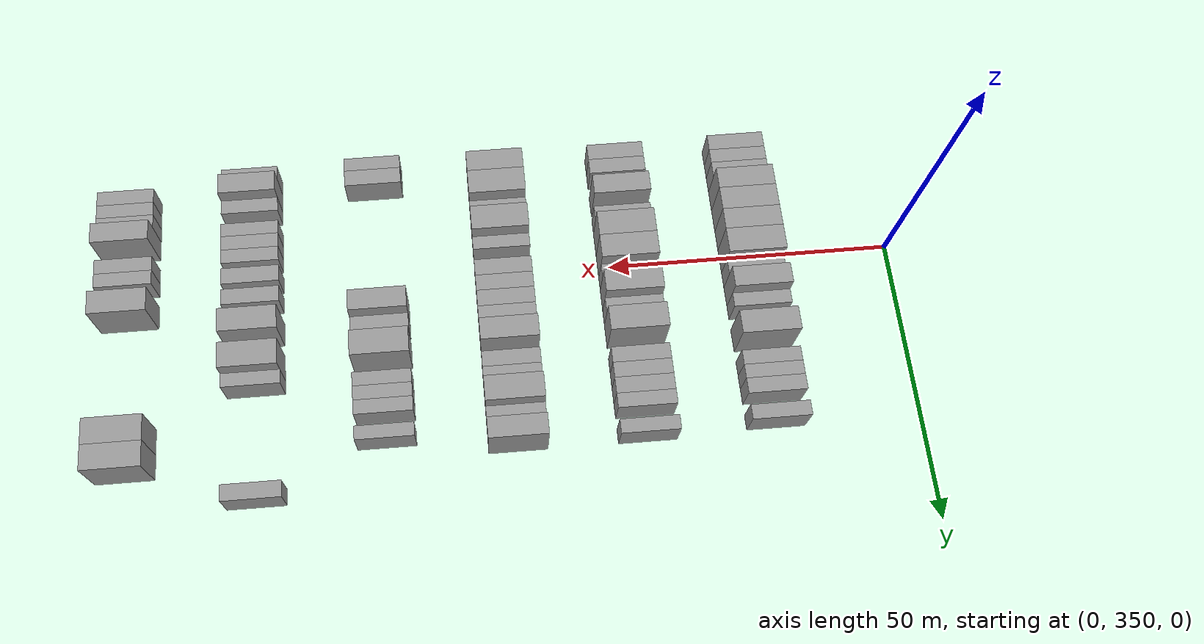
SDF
<sdf version="1.6">
 <world name="default">
  <model name="building_170">
   <static>1</static>
   <pose>25.0000 329.3556 0 0.000000 0.000000 0.000000</pose>
   <link name="link">
    <pose>0 0 3.00 0 0 0</pose>
    <collision name="collision"><geometry><box><size>10.0000 2.9465 6.0000</size></box></geometry></collision>
    <visual name="visual">
     <cast_shadows>0</cast_shadows>
     <geometry><box><size>10.0000 2.9465 6.0000</size></box></geometry>
     <material>
      <script>
       <uri>model://grey_wall/materials/scripts</uri>
       <uri>model://grey_wall/materials/textures</uri>
       <name>vrc/grey_wall</name>
      </script>
     </material>
    </visual>
   </link>
  </model>
  <model name="building_171">
   <static>1</static>
   <pose>25.0000 332.1304 0 0.000000 0.000000 0.000000</pose>
   <link name="link">
    <pose>0 0 3.00 0 0 0</pose>
    <collision name="collision"><geometry><box><size>10.0000 2.6031 6.0000</size></box></geometry></collision>
    <visual name="visual">
     <cast_shadows>0</cast_shadows>
     <geometry><box><size>10.0000 2.6031 6.0000</size></box></geometry>
     <material>
      <script>
       <uri>model://grey_wall/materials/scripts</uri>
       <uri>model://grey_wall/materials/textures</uri>
       <name>vrc/grey_wall</name>
      </script>
     </material>
    </visual>
   </link>
  </model>
  <model name="building_172">
   <static>1</static>
   <pose>25.0000 334.8948 0 0.000000 0.000000 0.000000</pose>
   <link name="link">
    <pose>0 0 3.00 0 0 0</pose>
    <collision name="collision"><geometry><box><size>10.0000 2.9257 6.0000</size></box></geometry></collision>
    <visual name="visual">
     <cast_shadows>0</cast_shadows>
     <geometry><box><size>10.0000 2.9257 6.0000</size></box></geometry>
     <material>
      <script>
       <uri>model://grey_wall/materials/scripts</uri>
       <uri>model://grey_wall/materials/textures</uri>
       <name>vrc/grey_wall</name>
      </script>
     </material>
    </visual>
   </link>
  </model>
  <model name="building_173">
   <static>1</static>
   <pose>25.0000 338.2968 0 0.000000 0.000000 0.000000</pose>
   <link name="link">
    <pose>0 0 4.50 0 0 0</pose>
    <collision name="collision"><geometry><box><size>10.0000 3.8784 9.0000</size></box></geometry></collision>
    <visual name="visual">
     <cast_shadows>0</cast_shadows>
     <geometry><box><size>10.0000 3.8784 9.0000</size></box></geometry>
     <material>
      <script>
       <uri>model://grey_wall/materials/scripts</uri>
       <uri>model://grey_wall/materials/textures</uri>
       <name>vrc/grey_wall</name>
      </script>
     </material>
    </visual>
   </link>
  </model>
  <model name="building_174">
   <static>1</static>
   <pose>25.0000 342.3280 0 0.000000 0.000000 0.000000</pose>
   <link name="link">
    <pose>0 0 4.50 0 0 0</pose>
    <collision name="collision"><geometry><box><size>10.0000 4.1838 9.0000</size></box></geometry></collision>
    <visual name="visual">
     <cast_shadows>0</cast_shadows>
     <geometry><box><size>10.0000 4.1838 9.0000</size></box></geometry>
     <material>
      <script>
       <uri>model://grey_wall/materials/scripts</uri>
       <uri>model://grey_wall/materials/textures</uri>
       <name>vrc/grey_wall</name>
      </script>
     </material>
    </visual>
   </link>
  </model>
  <model name="building_175">
   <static>1</static>
   <pose>25.0000 346.3346 0 0.000000 0.000000 0.000000</pose>
   <link name="link">
    <pose>0 0 4.50 0 0 0</pose>
    <collision name="collision"><geometry><box><size>10.0000 3.8296 9.0000</size></box></geometry></collision>
    <visual name="visual">
     <cast_shadows>0</cast_shadows>
     <geometry><box><size>10.0000 3.8296 9.0000</size></box></geometry>
     <material>
      <script>
       <uri>model://grey_wall/materials/scripts</uri>
       <uri>model://grey_wall/materials/textures</uri>
       <name>vrc/grey_wall</name>
      </script>
     </material>
    </visual>
   </link>
  </model>
  <model name="building_176">
   <static>1</static>
   <pose>25.0000 350.4904 0 0.000000 0.000000 0.000000</pose>
   <link name="link">
    <pose>0 0 4.50 0 0 0</pose>
    <collision name="collision"><geometry><box><size>10.0000 4.4819 9.0000</size></box></geometry></collision>
    <visual name="visual">
     <cast_shadows>0</cast_shadows>
     <geometry><box><size>10.0000 4.4819 9.0000</size></box></geometry>
     <material>
      <script>
       <uri>model://grey_wall/materials/scripts</uri>
       <uri>model://grey_wall/materials/textures</uri>
       <name>vrc/grey_wall</name>
      </script>
     </material>
    </visual>
   </link>
  </model>
  <model name="building_177">
   <static>1</static>
   <pose>25.0000 354.1709 0 0.000000 0.000000 0.000000</pose>
   <link name="link">
    <pose>0 0 3.00 0 0 0</pose>
    <collision name="collision"><geometry><box><size>10.0000 2.8792 6.0000</size></box></geometry></collision>
    <visual name="visual">
     <cast_shadows>0</cast_shadows>
     <geometry><box><size>10.0000 2.8792 6.0000</size></box></geometry>
     <material>
      <script>
       <uri>model://grey_wall/materials/scripts</uri>
       <uri>model://grey_wall/materials/textures</uri>
       <name>vrc/grey_wall</name>
      </script>
     </material>
    </visual>
   </link>
  </model>
  <model name="building_178">
   <static>1</static>
   <pose>25.0000 357.4337 0 0.000000 0.000000 0.000000</pose>
   <link name="link">
    <pose>0 0 4.50 0 0 0</pose>
    <collision name="collision"><geometry><box><size>10.0000 3.6463 9.0000</size></box></geometry></collision>
    <visual name="visual">
     <cast_shadows>0</cast_shadows>
     <geometry><box><size>10.0000 3.6463 9.0000</size></box></geometry>
     <material>
      <script>
       <uri>model://grey_wall/materials/scripts</uri>
       <uri>model://grey_wall/materials/textures</uri>
       <name>vrc/grey_wall</name>
      </script>
     </material>
    </visual>
   </link>
  </model>
  <model name="building_179">
   <static>1</static>
   <pose>25.0000 360.5016 0 0.000000 0.000000 0.000000</pose>
   <link name="link">
    <pose>0 0 3.00 0 0 0</pose>
    <collision name="collision"><geometry><box><size>10.0000 2.4896 6.0000</size></box></geometry></collision>
    <visual name="visual">
     <cast_shadows>0</cast_shadows>
     <geometry><box><size>10.0000 2.4896 6.0000</size></box></geometry>
     <material>
      <script>
       <uri>model://grey_wall/materials/scripts</uri>
       <uri>model://grey_wall/materials/textures</uri>
       <name>vrc/grey_wall</name>
      </script>
     </material>
    </visual>
   </link>
  </model>
  <model name="building_180">
   <static>1</static>
   <pose>25.0000 365.8027 0 0.000000 0.000000 0.000000</pose>
   <link name="link">
    <pose>0 0 4.50 0 0 0</pose>
    <collision name="collision"><geometry><box><size>10.0000 4.1126 9.0000</size></box></geometry></collision>
    <visual name="visual">
     <cast_shadows>0</cast_shadows>
     <geometry><box><size>10.0000 4.1126 9.0000</size></box></geometry>
     <material>
      <script>
       <uri>model://grey_wall/materials/scripts</uri>
       <uri>model://grey_wall/materials/textures</uri>
       <name>vrc/grey_wall</name>
      </script>
     </material>
    </visual>
   </link>
  </model>
  <model name="building_181">
   <static>1</static>
   <pose>25.0000 371.1342 0 0.000000 0.000000 0.000000</pose>
   <link name="link">
    <pose>0 0 3.00 0 0 0</pose>
    <collision name="collision"><geometry><box><size>10.0000 2.5502 6.0000</size></box></geometry></collision>
    <visual name="visual">
     <cast_shadows>0</cast_shadows>
     <geometry><box><size>10.0000 2.5502 6.0000</size></box></geometry>
     <material>
      <script>
       <uri>model://grey_wall/materials/scripts</uri>
       <uri>model://grey_wall/materials/textures</uri>
       <name>vrc/grey_wall</name>
      </script>
     </material>
    </visual>
   </link>
  </model>
  <model name="building_182">
   <static>1</static>
   <pose>25.0000 373.6312 0 0.000000 0.000000 0.000000</pose>
   <link name="link">
    <pose>0 0 3.00 0 0 0</pose>
    <collision name="collision"><geometry><box><size>10.0000 2.4437 6.0000</size></box></geometry></collision>
    <visual name="visual">
     <cast_shadows>0</cast_shadows>
     <geometry><box><size>10.0000 2.4437 6.0000</size></box></geometry>
     <material>
      <script>
       <uri>model://grey_wall/materials/scripts</uri>
       <uri>model://grey_wall/materials/textures</uri>
       <name>vrc/grey_wall</name>
      </script>
     </material>
    </visual>
   </link>
  </model>
  <model name="building_183">
   <static>1</static>
   <pose>25.0000 376.2066 0 0.000000 0.000000 0.000000</pose>
   <link name="link">
    <pose>0 0 3.00 0 0 0</pose>
    <collision name="collision"><geometry><box><size>10.0000 2.7072 6.0000</size></box></geometry></collision>
    <visual name="visual">
     <cast_shadows>0</cast_shadows>
     <geometry><box><size>10.0000 2.7072 6.0000</size></box></geometry>
     <material>
      <script>
       <uri>model://grey_wall/materials/scripts</uri>
       <uri>model://grey_wall/materials/textures</uri>
       <name>vrc/grey_wall</name>
      </script>
     </material>
    </visual>
   </link>
  </model>
  <model name="building_184">
   <static>1</static>
   <pose>25.0000 380.8460 0 0.000000 0.000000 0.000000</pose>
   <link name="link">
    <pose>0 0 3.00 0 0 0</pose>
    <collision name="collision"><geometry><box><size>10.0000 2.5715 6.0000</size></box></geometry></collision>
    <visual name="visual">
     <cast_shadows>0</cast_shadows>
     <geometry><box><size>10.0000 2.5715 6.0000</size></box></geometry>
     <material>
      <script>
       <uri>model://grey_wall/materials/scripts</uri>
       <uri>model://grey_wall/materials/textures</uri>
       <name>vrc/grey_wall</name>
      </script>
     </material>
    </visual>
   </link>
  </model>
  <model name="building_362">
   <static>1</static>
   <pose>47.0000 329.5957 0 0.000000 0.000000 0.000000</pose>
   <link name="link">
    <pose>0 0 3.00 0 0 0</pose>
    <collision name="collision"><geometry><box><size>10.0000 2.9752 6.0000</size></box></geometry></collision>
    <visual name="visual">
     <cast_shadows>0</cast_shadows>
     <geometry><box><size>10.0000 2.9752 6.0000</size></box></geometry>
     <material>
      <script>
       <uri>model://grey_wall/materials/scripts</uri>
       <uri>model://grey_wall/materials/textures</uri>
       <name>vrc/grey_wall</name>
      </script>
     </material>
    </visual>
   </link>
  </model>
  <model name="building_363">
   <static>1</static>
   <pose>47.0000 332.5052 0 0.000000 0.000000 0.000000</pose>
   <link name="link">
    <pose>0 0 3.00 0 0 0</pose>
    <collision name="collision"><geometry><box><size>10.0000 2.8438 6.0000</size></box></geometry></collision>
    <visual name="visual">
     <cast_shadows>0</cast_shadows>
     <geometry><box><size>10.0000 2.8438 6.0000</size></box></geometry>
     <material>
      <script>
       <uri>model://grey_wall/materials/scripts</uri>
       <uri>model://grey_wall/materials/textures</uri>
       <name>vrc/grey_wall</name>
      </script>
     </material>
    </visual>
   </link>
  </model>
  <model name="building_364">
   <static>1</static>
   <pose>47.0000 337.7546 0 0.000000 0.000000 0.000000</pose>
   <link name="link">
    <pose>0 0 4.50 0 0 0</pose>
    <collision name="collision"><geometry><box><size>10.0000 3.6550 9.0000</size></box></geometry></collision>
    <visual name="visual">
     <cast_shadows>0</cast_shadows>
     <geometry><box><size>10.0000 3.6550 9.0000</size></box></geometry>
     <material>
      <script>
       <uri>model://grey_wall/materials/scripts</uri>
       <uri>model://grey_wall/materials/textures</uri>
       <name>vrc/grey_wall</name>
      </script>
     </material>
    </visual>
   </link>
  </model>
  <model name="building_365">
   <static>1</static>
   <pose>47.0000 341.8988 0 0.000000 0.000000 0.000000</pose>
   <link name="link">
    <pose>0 0 3.00 0 0 0</pose>
    <collision name="collision"><geometry><box><size>10.0000 2.6334 6.0000</size></box></geometry></collision>
    <visual name="visual">
     <cast_shadows>0</cast_shadows>
     <geometry><box><size>10.0000 2.6334 6.0000</size></box></geometry>
     <material>
      <script>
       <uri>model://grey_wall/materials/scripts</uri>
       <uri>model://grey_wall/materials/textures</uri>
       <name>vrc/grey_wall</name>
      </script>
     </material>
    </visual>
   </link>
  </model>
  <model name="building_366">
   <static>1</static>
   <pose>47.0000 345.4534 0 0.000000 0.000000 0.000000</pose>
   <link name="link">
    <pose>0 0 4.50 0 0 0</pose>
    <collision name="collision"><geometry><box><size>10.0000 4.4756 9.0000</size></box></geometry></collision>
    <visual name="visual">
     <cast_shadows>0</cast_shadows>
     <geometry><box><size>10.0000 4.4756 9.0000</size></box></geometry>
     <material>
      <script>
       <uri>model://grey_wall/materials/scripts</uri>
       <uri>model://grey_wall/materials/textures</uri>
       <name>vrc/grey_wall</name>
      </script>
     </material>
    </visual>
   </link>
  </model>
  <model name="building_367">
   <static>1</static>
   <pose>47.0000 349.8148 0 0.000000 0.000000 0.000000</pose>
   <link name="link">
    <pose>0 0 4.50 0 0 0</pose>
    <collision name="collision"><geometry><box><size>10.0000 4.2474 9.0000</size></box></geometry></collision>
    <visual name="visual">
     <cast_shadows>0</cast_shadows>
     <geometry><box><size>10.0000 4.2474 9.0000</size></box></geometry>
     <material>
      <script>
       <uri>model://grey_wall/materials/scripts</uri>
       <uri>model://grey_wall/materials/textures</uri>
       <name>vrc/grey_wall</name>
      </script>
     </material>
    </visual>
   </link>
  </model>
  <model name="building_368">
   <static>1</static>
   <pose>47.0000 353.1732 0 0.000000 0.000000 0.000000</pose>
   <link name="link">
    <pose>0 0 3.00 0 0 0</pose>
    <collision name="collision"><geometry><box><size>10.0000 2.4692 6.0000</size></box></geometry></collision>
    <visual name="visual">
     <cast_shadows>0</cast_shadows>
     <geometry><box><size>10.0000 2.4692 6.0000</size></box></geometry>
     <material>
      <script>
       <uri>model://grey_wall/materials/scripts</uri>
       <uri>model://grey_wall/materials/textures</uri>
       <name>vrc/grey_wall</name>
      </script>
     </material>
    </visual>
   </link>
  </model>
  <model name="building_369">
   <static>1</static>
   <pose>47.0000 356.3895 0 0.000000 0.000000 0.000000</pose>
   <link name="link">
    <pose>0 0 4.50 0 0 0</pose>
    <collision name="collision"><geometry><box><size>10.0000 3.9636 9.0000</size></box></geometry></collision>
    <visual name="visual">
     <cast_shadows>0</cast_shadows>
     <geometry><box><size>10.0000 3.9636 9.0000</size></box></geometry>
     <material>
      <script>
       <uri>model://grey_wall/materials/scripts</uri>
       <uri>model://grey_wall/materials/textures</uri>
       <name>vrc/grey_wall</name>
      </script>
     </material>
    </visual>
   </link>
  </model>
  <model name="building_370">
   <static>1</static>
   <pose>47.0000 359.7651 0 0.000000 0.000000 0.000000</pose>
   <link name="link">
    <pose>0 0 3.00 0 0 0</pose>
    <collision name="collision"><geometry><box><size>10.0000 2.7875 6.0000</size></box></geometry></collision>
    <visual name="visual">
     <cast_shadows>0</cast_shadows>
     <geometry><box><size>10.0000 2.7875 6.0000</size></box></geometry>
     <material>
      <script>
       <uri>model://grey_wall/materials/scripts</uri>
       <uri>model://grey_wall/materials/textures</uri>
       <name>vrc/grey_wall</name>
      </script>
     </material>
    </visual>
   </link>
  </model>
  <model name="building_371">
   <static>1</static>
   <pose>47.0000 363.3175 0 0.000000 0.000000 0.000000</pose>
   <link name="link">
    <pose>0 0 4.50 0 0 0</pose>
    <collision name="collision"><geometry><box><size>10.0000 4.3174 9.0000</size></box></geometry></collision>
    <visual name="visual">
     <cast_shadows>0</cast_shadows>
     <geometry><box><size>10.0000 4.3174 9.0000</size></box></geometry>
     <material>
      <script>
       <uri>model://grey_wall/materials/scripts</uri>
       <uri>model://grey_wall/materials/textures</uri>
       <name>vrc/grey_wall</name>
      </script>
     </material>
    </visual>
   </link>
  </model>
  <model name="building_372">
   <static>1</static>
   <pose>47.0000 368.8625 0 0.000000 0.000000 0.000000</pose>
   <link name="link">
    <pose>0 0 3.00 0 0 0</pose>
    <collision name="collision"><geometry><box><size>10.0000 2.7726 6.0000</size></box></geometry></collision>
    <visual name="visual">
     <cast_shadows>0</cast_shadows>
     <geometry><box><size>10.0000 2.7726 6.0000</size></box></geometry>
     <material>
      <script>
       <uri>model://grey_wall/materials/scripts</uri>
       <uri>model://grey_wall/materials/textures</uri>
       <name>vrc/grey_wall</name>
      </script>
     </material>
    </visual>
   </link>
  </model>
  <model name="building_373">
   <static>1</static>
   <pose>47.0000 371.5925 0 0.000000 0.000000 0.000000</pose>
   <link name="link">
    <pose>0 0 3.00 0 0 0</pose>
    <collision name="collision"><geometry><box><size>10.0000 2.6873 6.0000</size></box></geometry></collision>
    <visual name="visual">
     <cast_shadows>0</cast_shadows>
     <geometry><box><size>10.0000 2.6873 6.0000</size></box></geometry>
     <material>
      <script>
       <uri>model://grey_wall/materials/scripts</uri>
       <uri>model://grey_wall/materials/textures</uri>
       <name>vrc/grey_wall</name>
      </script>
     </material>
    </visual>
   </link>
  </model>
  <model name="building_374">
   <static>1</static>
   <pose>47.0000 374.3512 0 0.000000 0.000000 0.000000</pose>
   <link name="link">
    <pose>0 0 3.00 0 0 0</pose>
    <collision name="collision"><geometry><box><size>10.0000 2.8302 6.0000</size></box></geometry></collision>
    <visual name="visual">
     <cast_shadows>0</cast_shadows>
     <geometry><box><size>10.0000 2.8302 6.0000</size></box></geometry>
     <material>
      <script>
       <uri>model://grey_wall/materials/scripts</uri>
       <uri>model://grey_wall/materials/textures</uri>
       <name>vrc/grey_wall</name>
      </script>
     </material>
    </visual>
   </link>
  </model>
  <model name="building_375">
   <static>1</static>
   <pose>47.0000 377.0423 0 0.000000 0.000000 0.000000</pose>
   <link name="link">
    <pose>0 0 3.00 0 0 0</pose>
    <collision name="collision"><geometry><box><size>10.0000 2.5520 6.0000</size></box></geometry></collision>
    <visual name="visual">
     <cast_shadows>0</cast_shadows>
     <geometry><box><size>10.0000 2.5520 6.0000</size></box></geometry>
     <material>
      <script>
       <uri>model://grey_wall/materials/scripts</uri>
       <uri>model://grey_wall/materials/textures</uri>
       <name>vrc/grey_wall</name>
      </script>
     </material>
    </visual>
   </link>
  </model>
  <model name="building_376">
   <static>1</static>
   <pose>47.0000 381.5546 0 0.000000 0.000000 0.000000</pose>
   <link name="link">
    <pose>0 0 3.00 0 0 0</pose>
    <collision name="collision"><geometry><box><size>10.0000 2.4726 6.0000</size></box></geometry></collision>
    <visual name="visual">
     <cast_shadows>0</cast_shadows>
     <geometry><box><size>10.0000 2.4726 6.0000</size></box></geometry>
     <material>
      <script>
       <uri>model://grey_wall/materials/scripts</uri>
       <uri>model://grey_wall/materials/textures</uri>
       <name>vrc/grey_wall</name>
      </script>
     </material>
    </visual>
   </link>
  </model>
  <model name="building_554">
   <static>1</static>
   <pose>69.0000 331.3287 0 0.000000 0.000000 0.000000</pose>
   <link name="link">
    <pose>0 0 4.50 0 0 0</pose>
    <collision name="collision"><geometry><box><size>10.0000 3.8752 9.0000</size></box></geometry></collision>
    <visual name="visual">
     <cast_shadows>0</cast_shadows>
     <geometry><box><size>10.0000 3.8752 9.0000</size></box></geometry>
     <material>
      <script>
       <uri>model://grey_wall/materials/scripts</uri>
       <uri>model://grey_wall/materials/textures</uri>
       <name>vrc/grey_wall</name>
      </script>
     </material>
    </visual>
   </link>
  </model>
  <model name="building_555">
   <static>1</static>
   <pose>69.0000 335.5026 0 0.000000 0.000000 0.000000</pose>
   <link name="link">
    <pose>0 0 4.50 0 0 0</pose>
    <collision name="collision"><geometry><box><size>10.0000 4.4726 9.0000</size></box></geometry></collision>
    <visual name="visual">
     <cast_shadows>0</cast_shadows>
     <geometry><box><size>10.0000 4.4726 9.0000</size></box></geometry>
     <material>
      <script>
       <uri>model://grey_wall/materials/scripts</uri>
       <uri>model://grey_wall/materials/textures</uri>
       <name>vrc/grey_wall</name>
      </script>
     </material>
    </visual>
   </link>
  </model>
  <model name="building_556">
   <static>1</static>
   <pose>69.0000 339.0526 0 0.000000 0.000000 0.000000</pose>
   <link name="link">
    <pose>0 0 3.00 0 0 0</pose>
    <collision name="collision"><geometry><box><size>10.0000 2.6275 6.0000</size></box></geometry></collision>
    <visual name="visual">
     <cast_shadows>0</cast_shadows>
     <geometry><box><size>10.0000 2.6275 6.0000</size></box></geometry>
     <material>
      <script>
       <uri>model://grey_wall/materials/scripts</uri>
       <uri>model://grey_wall/materials/textures</uri>
       <name>vrc/grey_wall</name>
      </script>
     </material>
    </visual>
   </link>
  </model>
  <model name="building_557">
   <static>1</static>
   <pose>69.0000 342.6087 0 0.000000 0.000000 0.000000</pose>
   <link name="link">
    <pose>0 0 4.50 0 0 0</pose>
    <collision name="collision"><geometry><box><size>10.0000 4.4847 9.0000</size></box></geometry></collision>
    <visual name="visual">
     <cast_shadows>0</cast_shadows>
     <geometry><box><size>10.0000 4.4847 9.0000</size></box></geometry>
     <material>
      <script>
       <uri>model://grey_wall/materials/scripts</uri>
       <uri>model://grey_wall/materials/textures</uri>
       <name>vrc/grey_wall</name>
      </script>
     </material>
    </visual>
   </link>
  </model>
  <model name="building_558">
   <static>1</static>
   <pose>69.0000 346.0771 0 0.000000 0.000000 0.000000</pose>
   <link name="link">
    <pose>0 0 3.00 0 0 0</pose>
    <collision name="collision"><geometry><box><size>10.0000 2.4521 6.0000</size></box></geometry></collision>
    <visual name="visual">
     <cast_shadows>0</cast_shadows>
     <geometry><box><size>10.0000 2.4521 6.0000</size></box></geometry>
     <material>
      <script>
       <uri>model://grey_wall/materials/scripts</uri>
       <uri>model://grey_wall/materials/textures</uri>
       <name>vrc/grey_wall</name>
      </script>
     </material>
    </visual>
   </link>
  </model>
  <model name="building_559">
   <static>1</static>
   <pose>69.0000 350.7894 0 0.000000 0.000000 0.000000</pose>
   <link name="link">
    <pose>0 0 3.00 0 0 0</pose>
    <collision name="collision"><geometry><box><size>10.0000 2.9725 6.0000</size></box></geometry></collision>
    <visual name="visual">
     <cast_shadows>0</cast_shadows>
     <geometry><box><size>10.0000 2.9725 6.0000</size></box></geometry>
     <material>
      <script>
       <uri>model://grey_wall/materials/scripts</uri>
       <uri>model://grey_wall/materials/textures</uri>
       <name>vrc/grey_wall</name>
      </script>
     </material>
    </visual>
   </link>
  </model>
  <model name="building_560">
   <static>1</static>
   <pose>69.0000 353.7149 0 0.000000 0.000000 0.000000</pose>
   <link name="link">
    <pose>0 0 3.00 0 0 0</pose>
    <collision name="collision"><geometry><box><size>10.0000 2.8785 6.0000</size></box></geometry></collision>
    <visual name="visual">
     <cast_shadows>0</cast_shadows>
     <geometry><box><size>10.0000 2.8785 6.0000</size></box></geometry>
     <material>
      <script>
       <uri>model://grey_wall/materials/scripts</uri>
       <uri>model://grey_wall/materials/textures</uri>
       <name>vrc/grey_wall</name>
      </script>
     </material>
    </visual>
   </link>
  </model>
  <model name="building_561">
   <static>1</static>
   <pose>69.0000 356.6251 0 0.000000 0.000000 0.000000</pose>
   <link name="link">
    <pose>0 0 3.00 0 0 0</pose>
    <collision name="collision"><geometry><box><size>10.0000 2.9419 6.0000</size></box></geometry></collision>
    <visual name="visual">
     <cast_shadows>0</cast_shadows>
     <geometry><box><size>10.0000 2.9419 6.0000</size></box></geometry>
     <material>
      <script>
       <uri>model://grey_wall/materials/scripts</uri>
       <uri>model://grey_wall/materials/textures</uri>
       <name>vrc/grey_wall</name>
      </script>
     </material>
    </visual>
   </link>
  </model>
  <model name="building_562">
   <static>1</static>
   <pose>69.0000 359.3264 0 0.000000 0.000000 0.000000</pose>
   <link name="link">
    <pose>0 0 3.00 0 0 0</pose>
    <collision name="collision"><geometry><box><size>10.0000 2.4606 6.0000</size></box></geometry></collision>
    <visual name="visual">
     <cast_shadows>0</cast_shadows>
     <geometry><box><size>10.0000 2.4606 6.0000</size></box></geometry>
     <material>
      <script>
       <uri>model://grey_wall/materials/scripts</uri>
       <uri>model://grey_wall/materials/textures</uri>
       <name>vrc/grey_wall</name>
      </script>
     </material>
    </visual>
   </link>
  </model>
  <model name="building_563">
   <static>1</static>
   <pose>69.0000 363.5041 0 0.000000 0.000000 0.000000</pose>
   <link name="link">
    <pose>0 0 4.50 0 0 0</pose>
    <collision name="collision"><geometry><box><size>10.0000 3.8948 9.0000</size></box></geometry></collision>
    <visual name="visual">
     <cast_shadows>0</cast_shadows>
     <geometry><box><size>10.0000 3.8948 9.0000</size></box></geometry>
     <material>
      <script>
       <uri>model://grey_wall/materials/scripts</uri>
       <uri>model://grey_wall/materials/textures</uri>
       <name>vrc/grey_wall</name>
      </script>
     </material>
    </visual>
   </link>
  </model>
  <model name="building_564">
   <static>1</static>
   <pose>69.0000 367.8388 0 0.000000 0.000000 0.000000</pose>
   <link name="link">
    <pose>0 0 3.00 0 0 0</pose>
    <collision name="collision"><geometry><box><size>10.0000 2.7747 6.0000</size></box></geometry></collision>
    <visual name="visual">
     <cast_shadows>0</cast_shadows>
     <geometry><box><size>10.0000 2.7747 6.0000</size></box></geometry>
     <material>
      <script>
       <uri>model://grey_wall/materials/scripts</uri>
       <uri>model://grey_wall/materials/textures</uri>
       <name>vrc/grey_wall</name>
      </script>
     </material>
    </visual>
   </link>
  </model>
  <model name="building_565">
   <static>1</static>
   <pose>69.0000 370.5833 0 0.000000 0.000000 0.000000</pose>
   <link name="link">
    <pose>0 0 3.00 0 0 0</pose>
    <collision name="collision"><geometry><box><size>10.0000 2.7143 6.0000</size></box></geometry></collision>
    <visual name="visual">
     <cast_shadows>0</cast_shadows>
     <geometry><box><size>10.0000 2.7143 6.0000</size></box></geometry>
     <material>
      <script>
       <uri>model://grey_wall/materials/scripts</uri>
       <uri>model://grey_wall/materials/textures</uri>
       <name>vrc/grey_wall</name>
      </script>
     </material>
    </visual>
   </link>
  </model>
  <model name="building_566">
   <static>1</static>
   <pose>69.0000 374.1105 0 0.000000 0.000000 0.000000</pose>
   <link name="link">
    <pose>0 0 4.50 0 0 0</pose>
    <collision name="collision"><geometry><box><size>10.0000 4.3400 9.0000</size></box></geometry></collision>
    <visual name="visual">
     <cast_shadows>0</cast_shadows>
     <geometry><box><size>10.0000 4.3400 9.0000</size></box></geometry>
     <material>
      <script>
       <uri>model://grey_wall/materials/scripts</uri>
       <uri>model://grey_wall/materials/textures</uri>
       <name>vrc/grey_wall</name>
      </script>
     </material>
    </visual>
   </link>
  </model>
  <model name="building_567">
   <static>1</static>
   <pose>69.0000 377.6994 0 0.000000 0.000000 0.000000</pose>
   <link name="link">
    <pose>0 0 3.00 0 0 0</pose>
    <collision name="collision"><geometry><box><size>10.0000 2.8377 6.0000</size></box></geometry></collision>
    <visual name="visual">
     <cast_shadows>0</cast_shadows>
     <geometry><box><size>10.0000 2.8377 6.0000</size></box></geometry>
     <material>
      <script>
       <uri>model://grey_wall/materials/scripts</uri>
       <uri>model://grey_wall/materials/textures</uri>
       <name>vrc/grey_wall</name>
      </script>
     </material>
    </visual>
   </link>
  </model>
  <model name="building_568">
   <static>1</static>
   <pose>69.0000 380.9328 0 0.000000 0.000000 0.000000</pose>
   <link name="link">
    <pose>0 0 4.50 0 0 0</pose>
    <collision name="collision"><geometry><box><size>10.0000 3.6291 9.0000</size></box></geometry></collision>
    <visual name="visual">
     <cast_shadows>0</cast_shadows>
     <geometry><box><size>10.0000 3.6291 9.0000</size></box></geometry>
     <material>
      <script>
       <uri>model://grey_wall/materials/scripts</uri>
       <uri>model://grey_wall/materials/textures</uri>
       <name>vrc/grey_wall</name>
      </script>
     </material>
    </visual>
   </link>
  </model>
  <model name="building_744">
   <static>1</static>
   <pose>91.0000 328.6640 0 0.000000 0.000000 0.000000</pose>
   <link name="link">
    <pose>0 0 3.00 0 0 0</pose>
    <collision name="collision"><geometry><box><size>10.0000 2.4816 6.0000</size></box></geometry></collision>
    <visual name="visual">
     <cast_shadows>0</cast_shadows>
     <geometry><box><size>10.0000 2.4816 6.0000</size></box></geometry>
     <material>
      <script>
       <uri>model://grey_wall/materials/scripts</uri>
       <uri>model://grey_wall/materials/textures</uri>
       <name>vrc/grey_wall</name>
      </script>
     </material>
    </visual>
   </link>
  </model>
  <model name="building_745">
   <static>1</static>
   <pose>91.0000 331.4032 0 0.000000 0.000000 0.000000</pose>
   <link name="link">
    <pose>0 0 3.00 0 0 0</pose>
    <collision name="collision"><geometry><box><size>10.0000 2.9967 6.0000</size></box></geometry></collision>
    <visual name="visual">
     <cast_shadows>0</cast_shadows>
     <geometry><box><size>10.0000 2.9967 6.0000</size></box></geometry>
     <material>
      <script>
       <uri>model://grey_wall/materials/scripts</uri>
       <uri>model://grey_wall/materials/textures</uri>
       <name>vrc/grey_wall</name>
      </script>
     </material>
    </visual>
   </link>
  </model>
  <model name="building_746">
   <static>1</static>
   <pose>91.0000 356.4829 0 0.000000 0.000000 0.000000</pose>
   <link name="link">
    <pose>0 0 4.50 0 0 0</pose>
    <collision name="collision"><geometry><box><size>10.0000 3.7209 9.0000</size></box></geometry></collision>
    <visual name="visual">
     <cast_shadows>0</cast_shadows>
     <geometry><box><size>10.0000 3.7209 9.0000</size></box></geometry>
     <material>
      <script>
       <uri>model://grey_wall/materials/scripts</uri>
       <uri>model://grey_wall/materials/textures</uri>
       <name>vrc/grey_wall</name>
      </script>
     </material>
    </visual>
   </link>
  </model>
  <model name="building_747">
   <static>1</static>
   <pose>91.0000 359.6841 0 0.000000 0.000000 0.000000</pose>
   <link name="link">
    <pose>0 0 3.00 0 0 0</pose>
    <collision name="collision"><geometry><box><size>10.0000 2.6814 6.0000</size></box></geometry></collision>
    <visual name="visual">
     <cast_shadows>0</cast_shadows>
     <geometry><box><size>10.0000 2.6814 6.0000</size></box></geometry>
     <material>
      <script>
       <uri>model://grey_wall/materials/scripts</uri>
       <uri>model://grey_wall/materials/textures</uri>
       <name>vrc/grey_wall</name>
      </script>
     </material>
    </visual>
   </link>
  </model>
  <model name="building_748">
   <static>1</static>
   <pose>91.0000 364.2562 0 0.000000 0.000000 0.000000</pose>
   <link name="link">
    <pose>0 0 4.50 0 0 0</pose>
    <collision name="collision"><geometry><box><size>10.0000 4.4629 9.0000</size></box></geometry></collision>
    <visual name="visual">
     <cast_shadows>0</cast_shadows>
     <geometry><box><size>10.0000 4.4629 9.0000</size></box></geometry>
     <material>
      <script>
       <uri>model://grey_wall/materials/scripts</uri>
       <uri>model://grey_wall/materials/textures</uri>
       <name>vrc/grey_wall</name>
      </script>
     </material>
    </visual>
   </link>
  </model>
  <model name="building_749">
   <static>1</static>
   <pose>91.0000 369.7116 0 0.000000 0.000000 0.000000</pose>
   <link name="link">
    <pose>0 0 3.00 0 0 0</pose>
    <collision name="collision"><geometry><box><size>10.0000 2.4478 6.0000</size></box></geometry></collision>
    <visual name="visual">
     <cast_shadows>0</cast_shadows>
     <geometry><box><size>10.0000 2.4478 6.0000</size></box></geometry>
     <material>
      <script>
       <uri>model://grey_wall/materials/scripts</uri>
       <uri>model://grey_wall/materials/textures</uri>
       <name>vrc/grey_wall</name>
      </script>
     </material>
    </visual>
   </link>
  </model>
  <model name="building_750">
   <static>1</static>
   <pose>91.0000 372.1751 0 0.000000 0.000000 0.000000</pose>
   <link name="link">
    <pose>0 0 3.00 0 0 0</pose>
    <collision name="collision"><geometry><box><size>10.0000 2.4791 6.0000</size></box></geometry></collision>
    <visual name="visual">
     <cast_shadows>0</cast_shadows>
     <geometry><box><size>10.0000 2.4791 6.0000</size></box></geometry>
     <material>
      <script>
       <uri>model://grey_wall/materials/scripts</uri>
       <uri>model://grey_wall/materials/textures</uri>
       <name>vrc/grey_wall</name>
      </script>
     </material>
    </visual>
   </link>
  </model>
  <model name="building_751">
   <static>1</static>
   <pose>91.0000 374.6810 0 0.000000 0.000000 0.000000</pose>
   <link name="link">
    <pose>0 0 3.00 0 0 0</pose>
    <collision name="collision"><geometry><box><size>10.0000 2.5328 6.0000</size></box></geometry></collision>
    <visual name="visual">
     <cast_shadows>0</cast_shadows>
     <geometry><box><size>10.0000 2.5328 6.0000</size></box></geometry>
     <material>
      <script>
       <uri>model://grey_wall/materials/scripts</uri>
       <uri>model://grey_wall/materials/textures</uri>
       <name>vrc/grey_wall</name>
      </script>
     </material>
    </visual>
   </link>
  </model>
  <model name="building_752">
   <static>1</static>
   <pose>91.0000 379.1498 0 0.000000 0.000000 0.000000</pose>
   <link name="link">
    <pose>0 0 3.00 0 0 0</pose>
    <collision name="collision"><geometry><box><size>10.0000 2.4046 6.0000</size></box></geometry></collision>
    <visual name="visual">
     <cast_shadows>0</cast_shadows>
     <geometry><box><size>10.0000 2.4046 6.0000</size></box></geometry>
     <material>
      <script>
       <uri>model://grey_wall/materials/scripts</uri>
       <uri>model://grey_wall/materials/textures</uri>
       <name>vrc/grey_wall</name>
      </script>
     </material>
    </visual>
   </link>
  </model>
  <model name="building_924">
   <static>1</static>
   <pose>113.0000 329.2206 0 0.000000 0.000000 0.000000</pose>
   <link name="link">
    <pose>0 0 3.00 0 0 0</pose>
    <collision name="collision"><geometry><box><size>10.0000 2.6208 6.0000</size></box></geometry></collision>
    <visual name="visual">
     <cast_shadows>0</cast_shadows>
     <geometry><box><size>10.0000 2.6208 6.0000</size></box></geometry>
     <material>
      <script>
       <uri>model://grey_wall/materials/scripts</uri>
       <uri>model://grey_wall/materials/textures</uri>
       <name>vrc/grey_wall</name>
      </script>
     </material>
    </visual>
   </link>
  </model>
  <model name="building_925">
   <static>1</static>
   <pose>113.0000 332.3669 0 0.000000 0.000000 0.000000</pose>
   <link name="link">
    <pose>0 0 4.50 0 0 0</pose>
    <collision name="collision"><geometry><box><size>10.0000 3.6717 9.0000</size></box></geometry></collision>
    <visual name="visual">
     <cast_shadows>0</cast_shadows>
     <geometry><box><size>10.0000 3.6717 9.0000</size></box></geometry>
     <material>
      <script>
       <uri>model://grey_wall/materials/scripts</uri>
       <uri>model://grey_wall/materials/textures</uri>
       <name>vrc/grey_wall</name>
      </script>
     </material>
    </visual>
   </link>
  </model>
  <model name="building_926">
   <static>1</static>
   <pose>113.0000 335.4960 0 0.000000 0.000000 0.000000</pose>
   <link name="link">
    <pose>0 0 3.00 0 0 0</pose>
    <collision name="collision"><geometry><box><size>10.0000 2.5864 6.0000</size></box></geometry></collision>
    <visual name="visual">
     <cast_shadows>0</cast_shadows>
     <geometry><box><size>10.0000 2.5864 6.0000</size></box></geometry>
     <material>
      <script>
       <uri>model://grey_wall/materials/scripts</uri>
       <uri>model://grey_wall/materials/textures</uri>
       <name>vrc/grey_wall</name>
      </script>
     </material>
    </visual>
   </link>
  </model>
  <model name="building_927">
   <static>1</static>
   <pose>113.0000 340.0272 0 0.000000 0.000000 0.000000</pose>
   <link name="link">
    <pose>0 0 3.00 0 0 0</pose>
    <collision name="collision"><geometry><box><size>10.0000 2.4760 6.0000</size></box></geometry></collision>
    <visual name="visual">
     <cast_shadows>0</cast_shadows>
     <geometry><box><size>10.0000 2.4760 6.0000</size></box></geometry>
     <material>
      <script>
       <uri>model://grey_wall/materials/scripts</uri>
       <uri>model://grey_wall/materials/textures</uri>
       <name>vrc/grey_wall</name>
      </script>
     </material>
    </visual>
   </link>
  </model>
  <model name="building_928">
   <static>1</static>
   <pose>113.0000 342.5741 0 0.000000 0.000000 0.000000</pose>
   <link name="link">
    <pose>0 0 3.00 0 0 0</pose>
    <collision name="collision"><geometry><box><size>10.0000 2.6180 6.0000</size></box></geometry></collision>
    <visual name="visual">
     <cast_shadows>0</cast_shadows>
     <geometry><box><size>10.0000 2.6180 6.0000</size></box></geometry>
     <material>
      <script>
       <uri>model://grey_wall/materials/scripts</uri>
       <uri>model://grey_wall/materials/textures</uri>
       <name>vrc/grey_wall</name>
      </script>
     </material>
    </visual>
   </link>
  </model>
  <model name="building_929">
   <static>1</static>
   <pose>113.0000 345.1762 0 0.000000 0.000000 0.000000</pose>
   <link name="link">
    <pose>0 0 3.00 0 0 0</pose>
    <collision name="collision"><geometry><box><size>10.0000 2.5862 6.0000</size></box></geometry></collision>
    <visual name="visual">
     <cast_shadows>0</cast_shadows>
     <geometry><box><size>10.0000 2.5862 6.0000</size></box></geometry>
     <material>
      <script>
       <uri>model://grey_wall/materials/scripts</uri>
       <uri>model://grey_wall/materials/textures</uri>
       <name>vrc/grey_wall</name>
      </script>
     </material>
    </visual>
   </link>
  </model>
  <model name="building_930">
   <static>1</static>
   <pose>113.0000 348.9522 0 0.000000 0.000000 0.000000</pose>
   <link name="link">
    <pose>0 0 3.00 0 0 0</pose>
    <collision name="collision"><geometry><box><size>10.0000 2.9657 6.0000</size></box></geometry></collision>
    <visual name="visual">
     <cast_shadows>0</cast_shadows>
     <geometry><box><size>10.0000 2.9657 6.0000</size></box></geometry>
     <material>
      <script>
       <uri>model://grey_wall/materials/scripts</uri>
       <uri>model://grey_wall/materials/textures</uri>
       <name>vrc/grey_wall</name>
      </script>
     </material>
    </visual>
   </link>
  </model>
  <model name="building_931">
   <static>1</static>
   <pose>113.0000 352.8654 0 0.000000 0.000000 0.000000</pose>
   <link name="link">
    <pose>0 0 3.00 0 0 0</pose>
    <collision name="collision"><geometry><box><size>10.0000 2.8607 6.0000</size></box></geometry></collision>
    <visual name="visual">
     <cast_shadows>0</cast_shadows>
     <geometry><box><size>10.0000 2.8607 6.0000</size></box></geometry>
     <material>
      <script>
       <uri>model://grey_wall/materials/scripts</uri>
       <uri>model://grey_wall/materials/textures</uri>
       <name>vrc/grey_wall</name>
      </script>
     </material>
    </visual>
   </link>
  </model>
  <model name="building_932">
   <static>1</static>
   <pose>113.0000 358.3746 0 0.000000 0.000000 0.000000</pose>
   <link name="link">
    <pose>0 0 4.50 0 0 0</pose>
    <collision name="collision"><geometry><box><size>10.0000 4.1577 9.0000</size></box></geometry></collision>
    <visual name="visual">
     <cast_shadows>0</cast_shadows>
     <geometry><box><size>10.0000 4.1577 9.0000</size></box></geometry>
     <material>
      <script>
       <uri>model://grey_wall/materials/scripts</uri>
       <uri>model://grey_wall/materials/textures</uri>
       <name>vrc/grey_wall</name>
      </script>
     </material>
    </visual>
   </link>
  </model>
  <model name="building_933">
   <static>1</static>
   <pose>113.0000 364.6967 0 0.000000 0.000000 0.000000</pose>
   <link name="link">
    <pose>0 0 4.50 0 0 0</pose>
    <collision name="collision"><geometry><box><size>10.0000 4.4865 9.0000</size></box></geometry></collision>
    <visual name="visual">
     <cast_shadows>0</cast_shadows>
     <geometry><box><size>10.0000 4.4865 9.0000</size></box></geometry>
     <material>
      <script>
       <uri>model://grey_wall/materials/scripts</uri>
       <uri>model://grey_wall/materials/textures</uri>
       <name>vrc/grey_wall</name>
      </script>
     </material>
    </visual>
   </link>
  </model>
  <model name="building_934">
   <static>1</static>
   <pose>113.0000 368.1578 0 0.000000 0.000000 0.000000</pose>
   <link name="link">
    <pose>0 0 3.00 0 0 0</pose>
    <collision name="collision"><geometry><box><size>10.0000 2.4357 6.0000</size></box></geometry></collision>
    <visual name="visual">
     <cast_shadows>0</cast_shadows>
     <geometry><box><size>10.0000 2.4357 6.0000</size></box></geometry>
     <material>
      <script>
       <uri>model://grey_wall/materials/scripts</uri>
       <uri>model://grey_wall/materials/textures</uri>
       <name>vrc/grey_wall</name>
      </script>
     </material>
    </visual>
   </link>
  </model>
  <model name="building_935">
   <static>1</static>
   <pose>113.0000 387.5501 0 0.000000 0.000000 0.000000</pose>
   <link name="link">
    <pose>0 0 3.00 0 0 0</pose>
    <collision name="collision"><geometry><box><size>10.0000 2.7830 6.0000</size></box></geometry></collision>
    <visual name="visual">
     <cast_shadows>0</cast_shadows>
     <geometry><box><size>10.0000 2.7830 6.0000</size></box></geometry>
     <material>
      <script>
       <uri>model://grey_wall/materials/scripts</uri>
       <uri>model://grey_wall/materials/textures</uri>
       <name>vrc/grey_wall</name>
      </script>
     </material>
    </visual>
   </link>
  </model>
  <model name="building_1105">
   <static>1</static>
   <pose>135.0000 332.0498 0 0.000000 0.000000 0.000000</pose>
   <link name="link">
    <pose>0 0 3.00 0 0 0</pose>
    <collision name="collision"><geometry><box><size>10.0000 2.6745 6.0000</size></box></geometry></collision>
    <visual name="visual">
     <cast_shadows>0</cast_shadows>
     <geometry><box><size>10.0000 2.6745 6.0000</size></box></geometry>
     <material>
      <script>
       <uri>model://grey_wall/materials/scripts</uri>
       <uri>model://grey_wall/materials/textures</uri>
       <name>vrc/grey_wall</name>
      </script>
     </material>
    </visual>
   </link>
  </model>
  <model name="building_1106">
   <static>1</static>
   <pose>135.0000 334.6555 0 0.000000 0.000000 0.000000</pose>
   <link name="link">
    <pose>0 0 3.00 0 0 0</pose>
    <collision name="collision"><geometry><box><size>10.0000 2.5369 6.0000</size></box></geometry></collision>
    <visual name="visual">
     <cast_shadows>0</cast_shadows>
     <geometry><box><size>10.0000 2.5369 6.0000</size></box></geometry>
     <material>
      <script>
       <uri>model://grey_wall/materials/scripts</uri>
       <uri>model://grey_wall/materials/textures</uri>
       <name>vrc/grey_wall</name>
      </script>
     </material>
    </visual>
   </link>
  </model>
  <model name="building_1107">
   <static>1</static>
   <pose>135.0000 337.1954 0 0.000000 0.000000 0.000000</pose>
   <link name="link">
    <pose>0 0 3.00 0 0 0</pose>
    <collision name="collision"><geometry><box><size>10.0000 2.5429 6.0000</size></box></geometry></collision>
    <visual name="visual">
     <cast_shadows>0</cast_shadows>
     <geometry><box><size>10.0000 2.5429 6.0000</size></box></geometry>
     <material>
      <script>
       <uri>model://grey_wall/materials/scripts</uri>
       <uri>model://grey_wall/materials/textures</uri>
       <name>vrc/grey_wall</name>
      </script>
     </material>
    </visual>
   </link>
  </model>
  <model name="building_1108">
   <static>1</static>
   <pose>135.0000 340.2831 0 0.000000 0.000000 0.000000</pose>
   <link name="link">
    <pose>0 0 4.50 0 0 0</pose>
    <collision name="collision"><geometry><box><size>10.0000 3.6326 9.0000</size></box></geometry></collision>
    <visual name="visual">
     <cast_shadows>0</cast_shadows>
     <geometry><box><size>10.0000 3.6326 9.0000</size></box></geometry>
     <material>
      <script>
       <uri>model://grey_wall/materials/scripts</uri>
       <uri>model://grey_wall/materials/textures</uri>
       <name>vrc/grey_wall</name>
      </script>
     </material>
    </visual>
   </link>
  </model>
  <model name="building_1109">
   <static>1</static>
   <pose>135.0000 345.4223 0 0.000000 0.000000 0.000000</pose>
   <link name="link">
    <pose>0 0 3.00 0 0 0</pose>
    <collision name="collision"><geometry><box><size>10.0000 2.6459 6.0000</size></box></geometry></collision>
    <visual name="visual">
     <cast_shadows>0</cast_shadows>
     <geometry><box><size>10.0000 2.6459 6.0000</size></box></geometry>
     <material>
      <script>
       <uri>model://grey_wall/materials/scripts</uri>
       <uri>model://grey_wall/materials/textures</uri>
       <name>vrc/grey_wall</name>
      </script>
     </material>
    </visual>
   </link>
  </model>
  <model name="building_1110">
   <static>1</static>
   <pose>135.0000 348.0296 0 0.000000 0.000000 0.000000</pose>
   <link name="link">
    <pose>0 0 3.00 0 0 0</pose>
    <collision name="collision"><geometry><box><size>10.0000 2.5687 6.0000</size></box></geometry></collision>
    <visual name="visual">
     <cast_shadows>0</cast_shadows>
     <geometry><box><size>10.0000 2.5687 6.0000</size></box></geometry>
     <material>
      <script>
       <uri>model://grey_wall/materials/scripts</uri>
       <uri>model://grey_wall/materials/textures</uri>
       <name>vrc/grey_wall</name>
      </script>
     </material>
    </visual>
   </link>
  </model>
  <model name="building_1111">
   <static>1</static>
   <pose>135.0000 353.3972 0 0.000000 0.000000 0.000000</pose>
   <link name="link">
    <pose>0 0 4.50 0 0 0</pose>
    <collision name="collision"><geometry><box><size>10.0000 4.1664 9.0000</size></box></geometry></collision>
    <visual name="visual">
     <cast_shadows>0</cast_shadows>
     <geometry><box><size>10.0000 4.1664 9.0000</size></box></geometry>
     <material>
      <script>
       <uri>model://grey_wall/materials/scripts</uri>
       <uri>model://grey_wall/materials/textures</uri>
       <name>vrc/grey_wall</name>
      </script>
     </material>
    </visual>
   </link>
  </model>
  <model name="building_1112">
   <static>1</static>
   <pose>135.0000 376.2301 0 0.000000 0.000000 0.000000</pose>
   <link name="link">
    <pose>0 0 4.50 0 0 0</pose>
    <collision name="collision"><geometry><box><size>10.0000 4.4998 9.0000</size></box></geometry></collision>
    <visual name="visual">
     <cast_shadows>0</cast_shadows>
     <geometry><box><size>10.0000 4.4998 9.0000</size></box></geometry>
     <material>
      <script>
       <uri>model://grey_wall/materials/scripts</uri>
       <uri>model://grey_wall/materials/textures</uri>
       <name>vrc/grey_wall</name>
      </script>
     </material>
    </visual>
   </link>
  </model>
  <model name="building_1113">
   <static>1</static>
   <pose>135.0000 380.6687 0 0.000000 0.000000 0.000000</pose>
   <link name="link">
    <pose>0 0 4.50 0 0 0</pose>
    <collision name="collision"><geometry><box><size>10.0000 4.3775 9.0000</size></box></geometry></collision>
    <visual name="visual">
     <cast_shadows>0</cast_shadows>
     <geometry><box><size>10.0000 4.3775 9.0000</size></box></geometry>
     <material>
      <script>
       <uri>model://grey_wall/materials/scripts</uri>
       <uri>model://grey_wall/materials/textures</uri>
       <name>vrc/grey_wall</name>
      </script>
     </material>
    </visual>
   </link>
  </model>
 </world>
</sdf>
